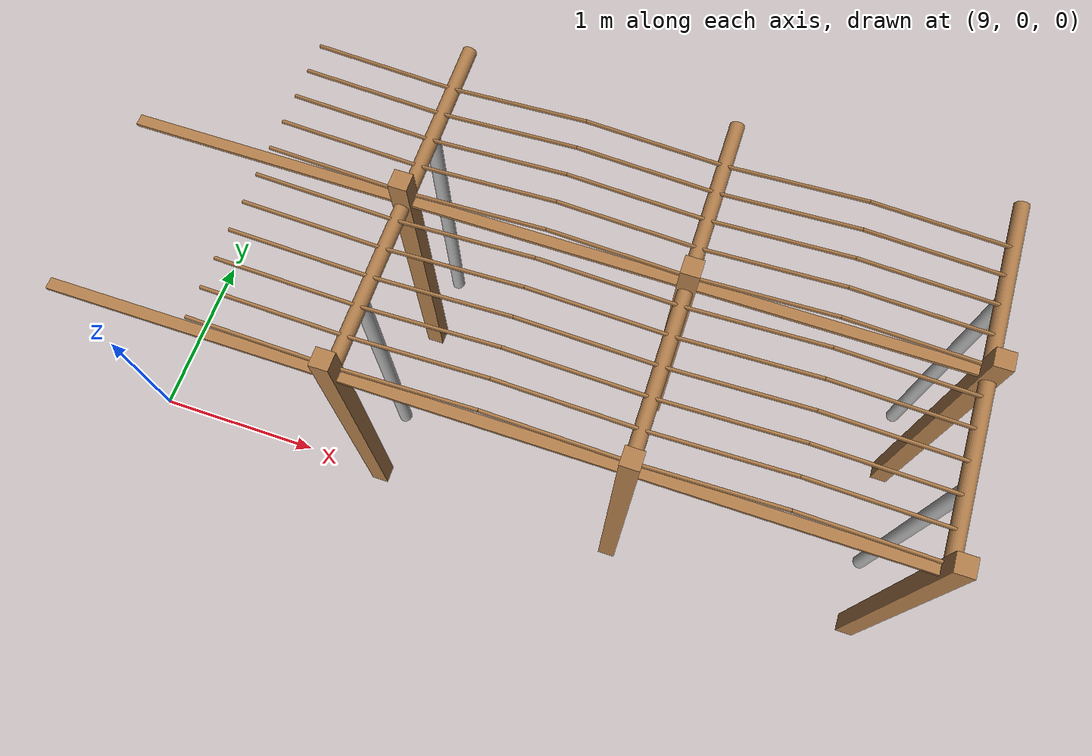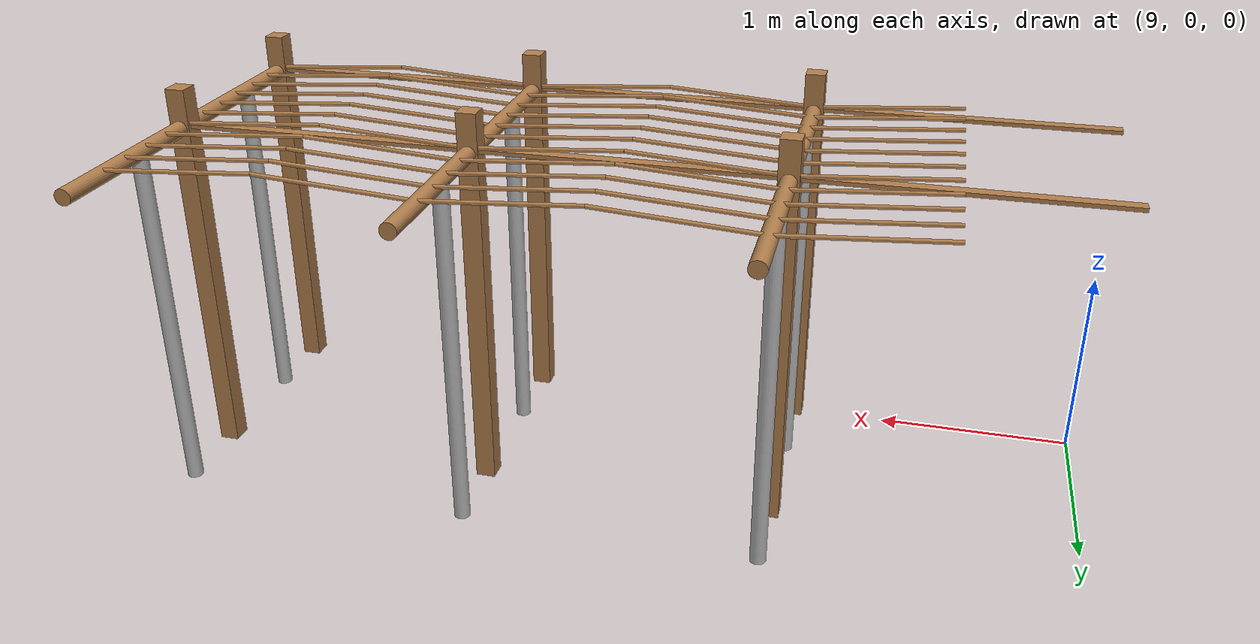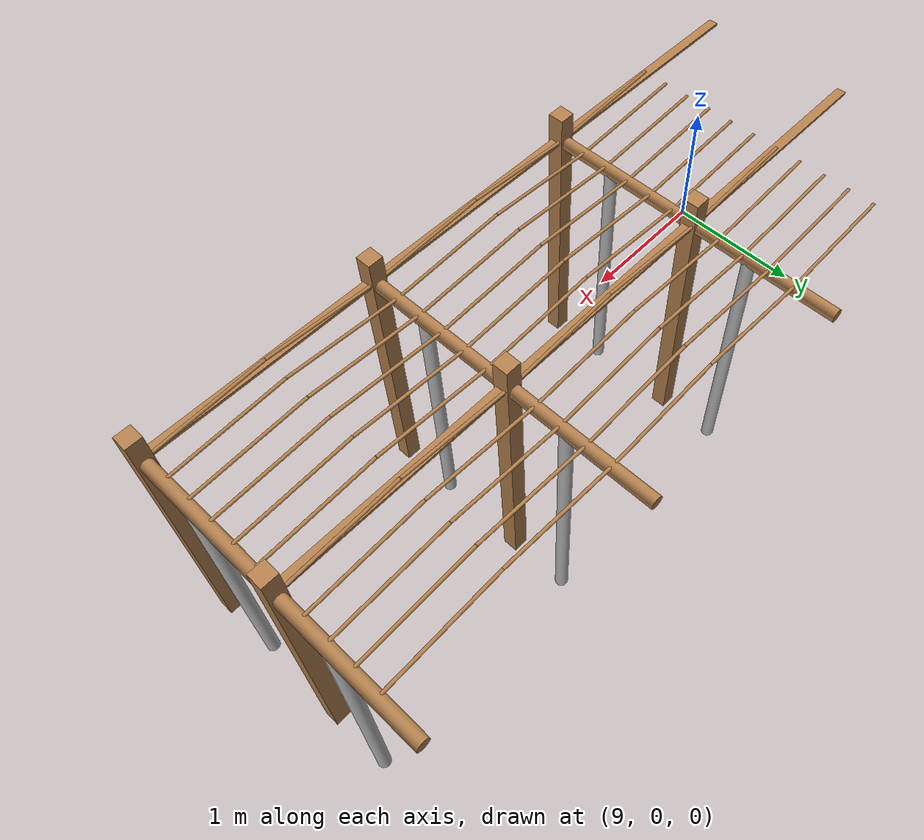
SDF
<sdf version="1.4">
 <model name="pergola">
  <include><name>post_77</name><pose>10.5 0.0 0 0 0 0</pose><uri>model://post</uri></include>
  <include><name>post_78</name><pose>10.5 1.0 0 0 0 0</pose><uri>model://post</uri></include>
  <include><name>post_88</name><pose>12.0 0.0 0 0 0 0</pose><uri>model://post</uri></include>
  <include><name>post_89</name><pose>12.0 1.0 0 0 0 0</pose><uri>model://post</uri></include>
  <include><name>post_99</name><pose>13.5 0.0 0 0 0 0</pose><uri>model://post</uri></include>
  <include><name>post_100</name><pose>13.5 1.0 0 0 0 0</pose><uri>model://post</uri></include>
  <link name="beam_66">
   <pose>9.75 0.0 1.81 0 0 0</pose>
   <collision name="collision"><geometry><box><size>1.5 0.06 0.02</size></box></geometry></collision>
   <visual name="visual">
    <geometry><box><size>1.5 0.06 0.02</size></box></geometry>
    <material><script><name>Gazebo/Wood</name></script></material>
   </visual>
   <inertial>
    <mass>5</mass>
    <inertia>
     <ixx>0.0016666666666666668</ixx>
     <ixy>0.0</ixy>
     <ixz>0.0</ixz>
     <iyy>0.9390000000000001</iyy>
     <iyz>0.0</iyz>
     <izz>0.9376666666666665</izz>
    </inertia>
   </inertial>
  </link>
  <link name="beam_67">
   <pose>9.75 1.0 1.81 0 0 0</pose>
   <collision name="collision"><geometry><box><size>1.5 0.06 0.02</size></box></geometry></collision>
   <visual name="visual">
    <geometry><box><size>1.5 0.06 0.02</size></box></geometry>
    <material><script><name>Gazebo/Wood</name></script></material>
   </visual>
   <inertial>
    <mass>5</mass>
    <inertia>
     <ixx>0.0016666666666666668</ixx>
     <ixy>0.0</ixy>
     <ixz>0.0</ixz>
     <iyy>0.9390000000000001</iyy>
     <iyz>0.0</iyz>
     <izz>0.9376666666666665</izz>
    </inertia>
   </inertial>
  </link>
  <link name="beam_77">
   <pose>11.25 0.0 1.81 0 0 0</pose>
   <collision name="collision"><geometry><box><size>1.5 0.06 0.02</size></box></geometry></collision>
   <visual name="visual">
    <geometry><box><size>1.5 0.06 0.02</size></box></geometry>
    <material><script><name>Gazebo/Wood</name></script></material>
   </visual>
   <inertial>
    <mass>5</mass>
    <inertia>
     <ixx>0.0016666666666666668</ixx>
     <ixy>0.0</ixy>
     <ixz>0.0</ixz>
     <iyy>0.9390000000000001</iyy>
     <iyz>0.0</iyz>
     <izz>0.9376666666666665</izz>
    </inertia>
   </inertial>
  </link>
  <link name="beam_78">
   <pose>11.25 1.0 1.81 0 0 0</pose>
   <collision name="collision"><geometry><box><size>1.5 0.06 0.02</size></box></geometry></collision>
   <visual name="visual">
    <geometry><box><size>1.5 0.06 0.02</size></box></geometry>
    <material><script><name>Gazebo/Wood</name></script></material>
   </visual>
   <inertial>
    <mass>5</mass>
    <inertia>
     <ixx>0.0016666666666666668</ixx>
     <ixy>0.0</ixy>
     <ixz>0.0</ixz>
     <iyy>0.9390000000000001</iyy>
     <iyz>0.0</iyz>
     <izz>0.9376666666666665</izz>
    </inertia>
   </inertial>
  </link>
  <link name="beam_88">
   <pose>12.75 0.0 1.81 0 0 0</pose>
   <collision name="collision"><geometry><box><size>1.5 0.06 0.02</size></box></geometry></collision>
   <visual name="visual">
    <geometry><box><size>1.5 0.06 0.02</size></box></geometry>
    <material><script><name>Gazebo/Wood</name></script></material>
   </visual>
   <inertial>
    <mass>5</mass>
    <inertia>
     <ixx>0.0016666666666666668</ixx>
     <ixy>0.0</ixy>
     <ixz>0.0</ixz>
     <iyy>0.9390000000000001</iyy>
     <iyz>0.0</iyz>
     <izz>0.9376666666666665</izz>
    </inertia>
   </inertial>
  </link>
  <link name="beam_89">
   <pose>12.75 1.0 1.81 0 0 0</pose>
   <collision name="collision"><geometry><box><size>1.5 0.06 0.02</size></box></geometry></collision>
   <visual name="visual">
    <geometry><box><size>1.5 0.06 0.02</size></box></geometry>
    <material><script><name>Gazebo/Wood</name></script></material>
   </visual>
   <inertial>
    <mass>5</mass>
    <inertia>
     <ixx>0.0016666666666666668</ixx>
     <ixy>0.0</ixy>
     <ixz>0.0</ixz>
     <iyy>0.9390000000000001</iyy>
     <iyz>0.0</iyz>
     <izz>0.9376666666666665</izz>
    </inertia>
   </inertial>
  </link>
  <include><name>tree_70</name><pose>10.5 0.4 0 0 0 0</pose><uri>model://tree_trunk</uri></include>
  <include><name>tree_71</name><pose>10.5 1.4 0 0 0 0</pose><uri>model://tree_trunk</uri></include>
  <include><name>tree_80</name><pose>12.0 0.4 0 0 0 0</pose><uri>model://tree_trunk</uri></include>
  <include><name>tree_81</name><pose>12.0 1.4 0 0 0 0</pose><uri>model://tree_trunk</uri></include>
  <include><name>tree_90</name><pose>13.5 0.4 0 0 0 0</pose><uri>model://tree_trunk</uri></include>
  <include><name>tree_91</name><pose>13.5 1.4 0 0 0 0</pose><uri>model://tree_trunk</uri></include>
  <link name="baseBranch_70">
   <pose>10.5 0.5 1.8 1.5707963267948966 0 0</pose>
   <collision name="collision">
    <geometry><cylinder><radius>0.04</radius><length>0.94</length></cylinder></geometry>
   </collision>
   <visual name="visual">
    <geometry><cylinder><radius>0.04</radius><length>0.94</length></cylinder></geometry>
    <material><script><name>Gazebo/WoodFloor</name></script></material>
   </visual>
   <inertial>
    <mass>10</mass>
    <inertia>
     <ixx>0.7403333333333334</ixx>
     <ixy>0.0</ixy>
     <ixz>0.0</ixz>
     <iyy>0.7403333333333334</iyy>
     <iyz>0.0</iyz>
     <izz>0.008</izz>
    </inertia>
   </inertial>
  </link>
  <link name="baseBranch_71">
   <pose>10.5 1.5 1.8 1.5707963267948966 0 0</pose>
   <collision name="collision">
    <geometry><cylinder><radius>0.04</radius><length>0.94</length></cylinder></geometry>
   </collision>
   <visual name="visual">
    <geometry><cylinder><radius>0.04</radius><length>0.94</length></cylinder></geometry>
    <material><script><name>Gazebo/WoodFloor</name></script></material>
   </visual>
   <inertial>
    <mass>10</mass>
    <inertia>
     <ixx>0.7403333333333334</ixx>
     <ixy>0.0</ixy>
     <ixz>0.0</ixz>
     <iyy>0.7403333333333334</iyy>
     <iyz>0.0</iyz>
     <izz>0.008</izz>
    </inertia>
   </inertial>
  </link>
  <link name="baseBranch_80">
   <pose>12.0 0.5 1.8 1.5707963267948966 0 0</pose>
   <collision name="collision">
    <geometry><cylinder><radius>0.04</radius><length>0.94</length></cylinder></geometry>
   </collision>
   <visual name="visual">
    <geometry><cylinder><radius>0.04</radius><length>0.94</length></cylinder></geometry>
    <material><script><name>Gazebo/WoodFloor</name></script></material>
   </visual>
   <inertial>
    <mass>10</mass>
    <inertia>
     <ixx>0.7403333333333334</ixx>
     <ixy>0.0</ixy>
     <ixz>0.0</ixz>
     <iyy>0.7403333333333334</iyy>
     <iyz>0.0</iyz>
     <izz>0.008</izz>
    </inertia>
   </inertial>
  </link>
  <link name="baseBranch_81">
   <pose>12.0 1.5 1.8 1.5707963267948966 0 0</pose>
   <collision name="collision">
    <geometry><cylinder><radius>0.04</radius><length>0.94</length></cylinder></geometry>
   </collision>
   <visual name="visual">
    <geometry><cylinder><radius>0.04</radius><length>0.94</length></cylinder></geometry>
    <material><script><name>Gazebo/WoodFloor</name></script></material>
   </visual>
   <inertial>
    <mass>10</mass>
    <inertia>
     <ixx>0.7403333333333334</ixx>
     <ixy>0.0</ixy>
     <ixz>0.0</ixz>
     <iyy>0.7403333333333334</iyy>
     <iyz>0.0</iyz>
     <izz>0.008</izz>
    </inertia>
   </inertial>
  </link>
  <link name="baseBranch_90">
   <pose>13.5 0.5 1.8 1.5707963267948966 0 0</pose>
   <collision name="collision">
    <geometry><cylinder><radius>0.04</radius><length>0.94</length></cylinder></geometry>
   </collision>
   <visual name="visual">
    <geometry><cylinder><radius>0.04</radius><length>0.94</length></cylinder></geometry>
    <material><script><name>Gazebo/WoodFloor</name></script></material>
   </visual>
   <inertial>
    <mass>10</mass>
    <inertia>
     <ixx>0.7403333333333334</ixx>
     <ixy>0.0</ixy>
     <ixz>0.0</ixz>
     <iyy>0.7403333333333334</iyy>
     <iyz>0.0</iyz>
     <izz>0.008</izz>
    </inertia>
   </inertial>
  </link>
  <link name="baseBranch_91">
   <pose>13.5 1.5 1.8 1.5707963267948966 0 0</pose>
   <collision name="collision">
    <geometry><cylinder><radius>0.04</radius><length>0.94</length></cylinder></geometry>
   </collision>
   <visual name="visual">
    <geometry><cylinder><radius>0.04</radius><length>0.94</length></cylinder></geometry>
    <material><script><name>Gazebo/WoodFloor</name></script></material>
   </visual>
   <inertial>
    <mass>10</mass>
    <inertia>
     <ixx>0.7403333333333334</ixx>
     <ixy>0.0</ixy>
     <ixz>0.0</ixz>
     <iyy>0.7403333333333334</iyy>
     <iyz>0.0</iyz>
     <izz>0.008</izz>
    </inertia>
   </inertial>
  </link>
  <link name="vine_721">
   <pose>10.125 0.03 1.85 0 -1.5042281630190728 0</pose>
   <collision name="collision">
    <geometry><cylinder><radius>0.01</radius><length>0.7516648189186453</length></cylinder></geometry>
   </collision>
   <visual name="visual">
    <geometry><cylinder><radius>0.01</radius><length>0.7516648189186453</length></cylinder></geometry>
    <material><script><name>Gazebo/WoodFloor</name></script></material>
   </visual>
   <inertial>
    <mass>5</mass>
    <inertia>
     <ixx>0.23554166666666657</ixx>
     <ixy>0.0</ixy>
     <ixz>0.0</ixz>
     <iyy>0.23554166666666657</iyy>
     <iyz>0.0</iyz>
     <izz>0.00025</izz>
    </inertia>
   </inertial>
  </link>
  <link name="vine_723">
   <pose>10.125 0.19666666666666666 1.85 0 -1.5042281630190728 0</pose>
   <collision name="collision">
    <geometry><cylinder><radius>0.01</radius><length>0.7516648189186453</length></cylinder></geometry>
   </collision>
   <visual name="visual">
    <geometry><cylinder><radius>0.01</radius><length>0.7516648189186453</length></cylinder></geometry>
    <material><script><name>Gazebo/WoodFloor</name></script></material>
   </visual>
   <inertial>
    <mass>5</mass>
    <inertia>
     <ixx>0.23554166666666657</ixx>
     <ixy>0.0</ixy>
     <ixz>0.0</ixz>
     <iyy>0.23554166666666657</iyy>
     <iyz>0.0</iyz>
     <izz>0.00025</izz>
    </inertia>
   </inertial>
  </link>
  <link name="vine_725">
   <pose>10.125 0.3633333333333333 1.85 0 -1.5042281630190728 0</pose>
   <collision name="collision">
    <geometry><cylinder><radius>0.01</radius><length>0.7516648189186453</length></cylinder></geometry>
   </collision>
   <visual name="visual">
    <geometry><cylinder><radius>0.01</radius><length>0.7516648189186453</length></cylinder></geometry>
    <material><script><name>Gazebo/WoodFloor</name></script></material>
   </visual>
   <inertial>
    <mass>5</mass>
    <inertia>
     <ixx>0.23554166666666657</ixx>
     <ixy>0.0</ixy>
     <ixz>0.0</ixz>
     <iyy>0.23554166666666657</iyy>
     <iyz>0.0</iyz>
     <izz>0.00025</izz>
    </inertia>
   </inertial>
  </link>
  <link name="vine_727">
   <pose>10.125 0.53 1.85 0 -1.5042281630190728 0</pose>
   <collision name="collision">
    <geometry><cylinder><radius>0.01</radius><length>0.7516648189186453</length></cylinder></geometry>
   </collision>
   <visual name="visual">
    <geometry><cylinder><radius>0.01</radius><length>0.7516648189186453</length></cylinder></geometry>
    <material><script><name>Gazebo/WoodFloor</name></script></material>
   </visual>
   <inertial>
    <mass>5</mass>
    <inertia>
     <ixx>0.23554166666666657</ixx>
     <ixy>0.0</ixy>
     <ixz>0.0</ixz>
     <iyy>0.23554166666666657</iyy>
     <iyz>0.0</iyz>
     <izz>0.00025</izz>
    </inertia>
   </inertial>
  </link>
  <link name="vine_729">
   <pose>10.125 0.6966666666666667 1.85 0 -1.5042281630190728 0</pose>
   <collision name="collision">
    <geometry><cylinder><radius>0.01</radius><length>0.7516648189186453</length></cylinder></geometry>
   </collision>
   <visual name="visual">
    <geometry><cylinder><radius>0.01</radius><length>0.7516648189186453</length></cylinder></geometry>
    <material><script><name>Gazebo/WoodFloor</name></script></material>
   </visual>
   <inertial>
    <mass>5</mass>
    <inertia>
     <ixx>0.23554166666666657</ixx>
     <ixy>0.0</ixy>
     <ixz>0.0</ixz>
     <iyy>0.23554166666666657</iyy>
     <iyz>0.0</iyz>
     <izz>0.00025</izz>
    </inertia>
   </inertial>
  </link>
  <link name="vine_731">
   <pose>10.125 0.8633333333333333 1.85 0 -1.5042281630190728 0</pose>
   <collision name="collision">
    <geometry><cylinder><radius>0.01</radius><length>0.7516648189186453</length></cylinder></geometry>
   </collision>
   <visual name="visual">
    <geometry><cylinder><radius>0.01</radius><length>0.7516648189186453</length></cylinder></geometry>
    <material><script><name>Gazebo/WoodFloor</name></script></material>
   </visual>
   <inertial>
    <mass>5</mass>
    <inertia>
     <ixx>0.23554166666666657</ixx>
     <ixy>0.0</ixy>
     <ixz>0.0</ixz>
     <iyy>0.23554166666666657</iyy>
     <iyz>0.0</iyz>
     <izz>0.00025</izz>
    </inertia>
   </inertial>
  </link>
  <link name="vine_733">
   <pose>10.125 1.03 1.85 0 -1.5042281630190728 0</pose>
   <collision name="collision">
    <geometry><cylinder><radius>0.01</radius><length>0.7516648189186453</length></cylinder></geometry>
   </collision>
   <visual name="visual">
    <geometry><cylinder><radius>0.01</radius><length>0.7516648189186453</length></cylinder></geometry>
    <material><script><name>Gazebo/WoodFloor</name></script></material>
   </visual>
   <inertial>
    <mass>5</mass>
    <inertia>
     <ixx>0.23554166666666657</ixx>
     <ixy>0.0</ixy>
     <ixz>0.0</ixz>
     <iyy>0.23554166666666657</iyy>
     <iyz>0.0</iyz>
     <izz>0.00025</izz>
    </inertia>
   </inertial>
  </link>
  <link name="vine_735">
   <pose>10.125 1.1966666666666665 1.85 0 -1.5042281630190728 0</pose>
   <collision name="collision">
    <geometry><cylinder><radius>0.01</radius><length>0.7516648189186453</length></cylinder></geometry>
   </collision>
   <visual name="visual">
    <geometry><cylinder><radius>0.01</radius><length>0.7516648189186453</length></cylinder></geometry>
    <material><script><name>Gazebo/WoodFloor</name></script></material>
   </visual>
   <inertial>
    <mass>5</mass>
    <inertia>
     <ixx>0.23554166666666657</ixx>
     <ixy>0.0</ixy>
     <ixz>0.0</ixz>
     <iyy>0.23554166666666657</iyy>
     <iyz>0.0</iyz>
     <izz>0.00025</izz>
    </inertia>
   </inertial>
  </link>
  <link name="vine_737">
   <pose>10.125 1.3633333333333333 1.85 0 -1.5042281630190728 0</pose>
   <collision name="collision">
    <geometry><cylinder><radius>0.01</radius><length>0.7516648189186453</length></cylinder></geometry>
   </collision>
   <visual name="visual">
    <geometry><cylinder><radius>0.01</radius><length>0.7516648189186453</length></cylinder></geometry>
    <material><script><name>Gazebo/WoodFloor</name></script></material>
   </visual>
   <inertial>
    <mass>5</mass>
    <inertia>
     <ixx>0.23554166666666657</ixx>
     <ixy>0.0</ixy>
     <ixz>0.0</ixz>
     <iyy>0.23554166666666657</iyy>
     <iyz>0.0</iyz>
     <izz>0.00025</izz>
    </inertia>
   </inertial>
  </link>
  <link name="vine_739">
   <pose>10.125 1.53 1.85 0 -1.5042281630190728 0</pose>
   <collision name="collision">
    <geometry><cylinder><radius>0.01</radius><length>0.7516648189186453</length></cylinder></geometry>
   </collision>
   <visual name="visual">
    <geometry><cylinder><radius>0.01</radius><length>0.7516648189186453</length></cylinder></geometry>
    <material><script><name>Gazebo/WoodFloor</name></script></material>
   </visual>
   <inertial>
    <mass>5</mass>
    <inertia>
     <ixx>0.23554166666666657</ixx>
     <ixy>0.0</ixy>
     <ixz>0.0</ixz>
     <iyy>0.23554166666666657</iyy>
     <iyz>0.0</iyz>
     <izz>0.00025</izz>
    </inertia>
   </inertial>
  </link>
  <link name="vine_741">
   <pose>10.125 1.6966666666666665 1.85 0 -1.5042281630190728 0</pose>
   <collision name="collision">
    <geometry><cylinder><radius>0.01</radius><length>0.7516648189186453</length></cylinder></geometry>
   </collision>
   <visual name="visual">
    <geometry><cylinder><radius>0.01</radius><length>0.7516648189186453</length></cylinder></geometry>
    <material><script><name>Gazebo/WoodFloor</name></script></material>
   </visual>
   <inertial>
    <mass>5</mass>
    <inertia>
     <ixx>0.23554166666666657</ixx>
     <ixy>0.0</ixy>
     <ixz>0.0</ixz>
     <iyy>0.23554166666666657</iyy>
     <iyz>0.0</iyz>
     <izz>0.00025</izz>
    </inertia>
   </inertial>
  </link>
  <link name="vine_840">
   <pose>10.875 0.03 1.85 0 1.5042281630190728 0</pose>
   <collision name="collision">
    <geometry><cylinder><radius>0.01</radius><length>0.7516648189186453</length></cylinder></geometry>
   </collision>
   <visual name="visual">
    <geometry><cylinder><radius>0.01</radius><length>0.7516648189186453</length></cylinder></geometry>
    <material><script><name>Gazebo/WoodFloor</name></script></material>
   </visual>
   <inertial>
    <mass>5</mass>
    <inertia>
     <ixx>0.23554166666666657</ixx>
     <ixy>0.0</ixy>
     <ixz>0.0</ixz>
     <iyy>0.23554166666666657</iyy>
     <iyz>0.0</iyz>
     <izz>0.00025</izz>
    </inertia>
   </inertial>
  </link>
  <link name="vine_841">
   <pose>11.625 0.03 1.85 0 -1.5042281630190728 0</pose>
   <collision name="collision">
    <geometry><cylinder><radius>0.01</radius><length>0.7516648189186453</length></cylinder></geometry>
   </collision>
   <visual name="visual">
    <geometry><cylinder><radius>0.01</radius><length>0.7516648189186453</length></cylinder></geometry>
    <material><script><name>Gazebo/WoodFloor</name></script></material>
   </visual>
   <inertial>
    <mass>5</mass>
    <inertia>
     <ixx>0.23554166666666657</ixx>
     <ixy>0.0</ixy>
     <ixz>0.0</ixz>
     <iyy>0.23554166666666657</iyy>
     <iyz>0.0</iyz>
     <izz>0.00025</izz>
    </inertia>
   </inertial>
  </link>
  <link name="vine_842">
   <pose>10.875 0.19666666666666666 1.85 0 1.5042281630190728 0</pose>
   <collision name="collision">
    <geometry><cylinder><radius>0.01</radius><length>0.7516648189186453</length></cylinder></geometry>
   </collision>
   <visual name="visual">
    <geometry><cylinder><radius>0.01</radius><length>0.7516648189186453</length></cylinder></geometry>
    <material><script><name>Gazebo/WoodFloor</name></script></material>
   </visual>
   <inertial>
    <mass>5</mass>
    <inertia>
     <ixx>0.23554166666666657</ixx>
     <ixy>0.0</ixy>
     <ixz>0.0</ixz>
     <iyy>0.23554166666666657</iyy>
     <iyz>0.0</iyz>
     <izz>0.00025</izz>
    </inertia>
   </inertial>
  </link>
  <link name="vine_843">
   <pose>11.625 0.19666666666666666 1.85 0 -1.5042281630190728 0</pose>
   <collision name="collision">
    <geometry><cylinder><radius>0.01</radius><length>0.7516648189186453</length></cylinder></geometry>
   </collision>
   <visual name="visual">
    <geometry><cylinder><radius>0.01</radius><length>0.7516648189186453</length></cylinder></geometry>
    <material><script><name>Gazebo/WoodFloor</name></script></material>
   </visual>
   <inertial>
    <mass>5</mass>
    <inertia>
     <ixx>0.23554166666666657</ixx>
     <ixy>0.0</ixy>
     <ixz>0.0</ixz>
     <iyy>0.23554166666666657</iyy>
     <iyz>0.0</iyz>
     <izz>0.00025</izz>
    </inertia>
   </inertial>
  </link>
  <link name="vine_844">
   <pose>10.875 0.3633333333333333 1.85 0 1.5042281630190728 0</pose>
   <collision name="collision">
    <geometry><cylinder><radius>0.01</radius><length>0.7516648189186453</length></cylinder></geometry>
   </collision>
   <visual name="visual">
    <geometry><cylinder><radius>0.01</radius><length>0.7516648189186453</length></cylinder></geometry>
    <material><script><name>Gazebo/WoodFloor</name></script></material>
   </visual>
   <inertial>
    <mass>5</mass>
    <inertia>
     <ixx>0.23554166666666657</ixx>
     <ixy>0.0</ixy>
     <ixz>0.0</ixz>
     <iyy>0.23554166666666657</iyy>
     <iyz>0.0</iyz>
     <izz>0.00025</izz>
    </inertia>
   </inertial>
  </link>
  <link name="vine_845">
   <pose>11.625 0.3633333333333333 1.85 0 -1.5042281630190728 0</pose>
   <collision name="collision">
    <geometry><cylinder><radius>0.01</radius><length>0.7516648189186453</length></cylinder></geometry>
   </collision>
   <visual name="visual">
    <geometry><cylinder><radius>0.01</radius><length>0.7516648189186453</length></cylinder></geometry>
    <material><script><name>Gazebo/WoodFloor</name></script></material>
   </visual>
   <inertial>
    <mass>5</mass>
    <inertia>
     <ixx>0.23554166666666657</ixx>
     <ixy>0.0</ixy>
     <ixz>0.0</ixz>
     <iyy>0.23554166666666657</iyy>
     <iyz>0.0</iyz>
     <izz>0.00025</izz>
    </inertia>
   </inertial>
  </link>
  <link name="vine_846">
   <pose>10.875 0.53 1.85 0 1.5042281630190728 0</pose>
   <collision name="collision">
    <geometry><cylinder><radius>0.01</radius><length>0.7516648189186453</length></cylinder></geometry>
   </collision>
   <visual name="visual">
    <geometry><cylinder><radius>0.01</radius><length>0.7516648189186453</length></cylinder></geometry>
    <material><script><name>Gazebo/WoodFloor</name></script></material>
   </visual>
   <inertial>
    <mass>5</mass>
    <inertia>
     <ixx>0.23554166666666657</ixx>
     <ixy>0.0</ixy>
     <ixz>0.0</ixz>
     <iyy>0.23554166666666657</iyy>
     <iyz>0.0</iyz>
     <izz>0.00025</izz>
    </inertia>
   </inertial>
  </link>
  <link name="vine_847">
   <pose>11.625 0.53 1.85 0 -1.5042281630190728 0</pose>
   <collision name="collision">
    <geometry><cylinder><radius>0.01</radius><length>0.7516648189186453</length></cylinder></geometry>
   </collision>
   <visual name="visual">
    <geometry><cylinder><radius>0.01</radius><length>0.7516648189186453</length></cylinder></geometry>
    <material><script><name>Gazebo/WoodFloor</name></script></material>
   </visual>
   <inertial>
    <mass>5</mass>
    <inertia>
     <ixx>0.23554166666666657</ixx>
     <ixy>0.0</ixy>
     <ixz>0.0</ixz>
     <iyy>0.23554166666666657</iyy>
     <iyz>0.0</iyz>
     <izz>0.00025</izz>
    </inertia>
   </inertial>
  </link>
  <link name="vine_848">
   <pose>10.875 0.6966666666666667 1.85 0 1.5042281630190728 0</pose>
   <collision name="collision">
    <geometry><cylinder><radius>0.01</radius><length>0.7516648189186453</length></cylinder></geometry>
   </collision>
   <visual name="visual">
    <geometry><cylinder><radius>0.01</radius><length>0.7516648189186453</length></cylinder></geometry>
    <material><script><name>Gazebo/WoodFloor</name></script></material>
   </visual>
   <inertial>
    <mass>5</mass>
    <inertia>
     <ixx>0.23554166666666657</ixx>
     <ixy>0.0</ixy>
     <ixz>0.0</ixz>
     <iyy>0.23554166666666657</iyy>
     <iyz>0.0</iyz>
     <izz>0.00025</izz>
    </inertia>
   </inertial>
  </link>
  <link name="vine_849">
   <pose>11.625 0.6966666666666667 1.85 0 -1.5042281630190728 0</pose>
   <collision name="collision">
    <geometry><cylinder><radius>0.01</radius><length>0.7516648189186453</length></cylinder></geometry>
   </collision>
   <visual name="visual">
    <geometry><cylinder><radius>0.01</radius><length>0.7516648189186453</length></cylinder></geometry>
    <material><script><name>Gazebo/WoodFloor</name></script></material>
   </visual>
   <inertial>
    <mass>5</mass>
    <inertia>
     <ixx>0.23554166666666657</ixx>
     <ixy>0.0</ixy>
     <ixz>0.0</ixz>
     <iyy>0.23554166666666657</iyy>
     <iyz>0.0</iyz>
     <izz>0.00025</izz>
    </inertia>
   </inertial>
  </link>
  <link name="vine_850">
   <pose>10.875 0.8633333333333333 1.85 0 1.5042281630190728 0</pose>
   <collision name="collision">
    <geometry><cylinder><radius>0.01</radius><length>0.7516648189186453</length></cylinder></geometry>
   </collision>
   <visual name="visual">
    <geometry><cylinder><radius>0.01</radius><length>0.7516648189186453</length></cylinder></geometry>
    <material><script><name>Gazebo/WoodFloor</name></script></material>
   </visual>
   <inertial>
    <mass>5</mass>
    <inertia>
     <ixx>0.23554166666666657</ixx>
     <ixy>0.0</ixy>
     <ixz>0.0</ixz>
     <iyy>0.23554166666666657</iyy>
     <iyz>0.0</iyz>
     <izz>0.00025</izz>
    </inertia>
   </inertial>
  </link>
  <link name="vine_851">
   <pose>11.625 0.8633333333333333 1.85 0 -1.5042281630190728 0</pose>
   <collision name="collision">
    <geometry><cylinder><radius>0.01</radius><length>0.7516648189186453</length></cylinder></geometry>
   </collision>
   <visual name="visual">
    <geometry><cylinder><radius>0.01</radius><length>0.7516648189186453</length></cylinder></geometry>
    <material><script><name>Gazebo/WoodFloor</name></script></material>
   </visual>
   <inertial>
    <mass>5</mass>
    <inertia>
     <ixx>0.23554166666666657</ixx>
     <ixy>0.0</ixy>
     <ixz>0.0</ixz>
     <iyy>0.23554166666666657</iyy>
     <iyz>0.0</iyz>
     <izz>0.00025</izz>
    </inertia>
   </inertial>
  </link>
  <link name="vine_852">
   <pose>10.875 1.03 1.85 0 1.5042281630190728 0</pose>
   <collision name="collision">
    <geometry><cylinder><radius>0.01</radius><length>0.7516648189186453</length></cylinder></geometry>
   </collision>
   <visual name="visual">
    <geometry><cylinder><radius>0.01</radius><length>0.7516648189186453</length></cylinder></geometry>
    <material><script><name>Gazebo/WoodFloor</name></script></material>
   </visual>
   <inertial>
    <mass>5</mass>
    <inertia>
     <ixx>0.23554166666666657</ixx>
     <ixy>0.0</ixy>
     <ixz>0.0</ixz>
     <iyy>0.23554166666666657</iyy>
     <iyz>0.0</iyz>
     <izz>0.00025</izz>
    </inertia>
   </inertial>
  </link>
  <link name="vine_853">
   <pose>11.625 1.03 1.85 0 -1.5042281630190728 0</pose>
   <collision name="collision">
    <geometry><cylinder><radius>0.01</radius><length>0.7516648189186453</length></cylinder></geometry>
   </collision>
   <visual name="visual">
    <geometry><cylinder><radius>0.01</radius><length>0.7516648189186453</length></cylinder></geometry>
    <material><script><name>Gazebo/WoodFloor</name></script></material>
   </visual>
   <inertial>
    <mass>5</mass>
    <inertia>
     <ixx>0.23554166666666657</ixx>
     <ixy>0.0</ixy>
     <ixz>0.0</ixz>
     <iyy>0.23554166666666657</iyy>
     <iyz>0.0</iyz>
     <izz>0.00025</izz>
    </inertia>
   </inertial>
  </link>
  <link name="vine_854">
   <pose>10.875 1.1966666666666665 1.85 0 1.5042281630190728 0</pose>
   <collision name="collision">
    <geometry><cylinder><radius>0.01</radius><length>0.7516648189186453</length></cylinder></geometry>
   </collision>
   <visual name="visual">
    <geometry><cylinder><radius>0.01</radius><length>0.7516648189186453</length></cylinder></geometry>
    <material><script><name>Gazebo/WoodFloor</name></script></material>
   </visual>
   <inertial>
    <mass>5</mass>
    <inertia>
     <ixx>0.23554166666666657</ixx>
     <ixy>0.0</ixy>
     <ixz>0.0</ixz>
     <iyy>0.23554166666666657</iyy>
     <iyz>0.0</iyz>
     <izz>0.00025</izz>
    </inertia>
   </inertial>
  </link>
  <link name="vine_855">
   <pose>11.625 1.1966666666666665 1.85 0 -1.5042281630190728 0</pose>
   <collision name="collision">
    <geometry><cylinder><radius>0.01</radius><length>0.7516648189186453</length></cylinder></geometry>
   </collision>
   <visual name="visual">
    <geometry><cylinder><radius>0.01</radius><length>0.7516648189186453</length></cylinder></geometry>
    <material><script><name>Gazebo/WoodFloor</name></script></material>
   </visual>
   <inertial>
    <mass>5</mass>
    <inertia>
     <ixx>0.23554166666666657</ixx>
     <ixy>0.0</ixy>
     <ixz>0.0</ixz>
     <iyy>0.23554166666666657</iyy>
     <iyz>0.0</iyz>
     <izz>0.00025</izz>
    </inertia>
   </inertial>
  </link>
  <link name="vine_856">
   <pose>10.875 1.3633333333333333 1.85 0 1.5042281630190728 0</pose>
   <collision name="collision">
    <geometry><cylinder><radius>0.01</radius><length>0.7516648189186453</length></cylinder></geometry>
   </collision>
   <visual name="visual">
    <geometry><cylinder><radius>0.01</radius><length>0.7516648189186453</length></cylinder></geometry>
    <material><script><name>Gazebo/WoodFloor</name></script></material>
   </visual>
   <inertial>
    <mass>5</mass>
    <inertia>
     <ixx>0.23554166666666657</ixx>
     <ixy>0.0</ixy>
     <ixz>0.0</ixz>
     <iyy>0.23554166666666657</iyy>
     <iyz>0.0</iyz>
     <izz>0.00025</izz>
    </inertia>
   </inertial>
  </link>
  <link name="vine_857">
   <pose>11.625 1.3633333333333333 1.85 0 -1.5042281630190728 0</pose>
   <collision name="collision">
    <geometry><cylinder><radius>0.01</radius><length>0.7516648189186453</length></cylinder></geometry>
   </collision>
   <visual name="visual">
    <geometry><cylinder><radius>0.01</radius><length>0.7516648189186453</length></cylinder></geometry>
    <material><script><name>Gazebo/WoodFloor</name></script></material>
   </visual>
   <inertial>
    <mass>5</mass>
    <inertia>
     <ixx>0.23554166666666657</ixx>
     <ixy>0.0</ixy>
     <ixz>0.0</ixz>
     <iyy>0.23554166666666657</iyy>
     <iyz>0.0</iyz>
     <izz>0.00025</izz>
    </inertia>
   </inertial>
  </link>
  <link name="vine_858">
   <pose>10.875 1.53 1.85 0 1.5042281630190728 0</pose>
   <collision name="collision">
    <geometry><cylinder><radius>0.01</radius><length>0.7516648189186453</length></cylinder></geometry>
   </collision>
   <visual name="visual">
    <geometry><cylinder><radius>0.01</radius><length>0.7516648189186453</length></cylinder></geometry>
    <material><script><name>Gazebo/WoodFloor</name></script></material>
   </visual>
   <inertial>
    <mass>5</mass>
    <inertia>
     <ixx>0.23554166666666657</ixx>
     <ixy>0.0</ixy>
     <ixz>0.0</ixz>
     <iyy>0.23554166666666657</iyy>
     <iyz>0.0</iyz>
     <izz>0.00025</izz>
    </inertia>
   </inertial>
  </link>
  <link name="vine_859">
   <pose>11.625 1.53 1.85 0 -1.5042281630190728 0</pose>
   <collision name="collision">
    <geometry><cylinder><radius>0.01</radius><length>0.7516648189186453</length></cylinder></geometry>
   </collision>
   <visual name="visual">
    <geometry><cylinder><radius>0.01</radius><length>0.7516648189186453</length></cylinder></geometry>
    <material><script><name>Gazebo/WoodFloor</name></script></material>
   </visual>
   <inertial>
    <mass>5</mass>
    <inertia>
     <ixx>0.23554166666666657</ixx>
     <ixy>0.0</ixy>
     <ixz>0.0</ixz>
     <iyy>0.23554166666666657</iyy>
     <iyz>0.0</iyz>
     <izz>0.00025</izz>
    </inertia>
   </inertial>
  </link>
  <link name="vine_860">
   <pose>10.875 1.6966666666666665 1.85 0 1.5042281630190728 0</pose>
   <collision name="collision">
    <geometry><cylinder><radius>0.01</radius><length>0.7516648189186453</length></cylinder></geometry>
   </collision>
   <visual name="visual">
    <geometry><cylinder><radius>0.01</radius><length>0.7516648189186453</length></cylinder></geometry>
    <material><script><name>Gazebo/WoodFloor</name></script></material>
   </visual>
   <inertial>
    <mass>5</mass>
    <inertia>
     <ixx>0.23554166666666657</ixx>
     <ixy>0.0</ixy>
     <ixz>0.0</ixz>
     <iyy>0.23554166666666657</iyy>
     <iyz>0.0</iyz>
     <izz>0.00025</izz>
    </inertia>
   </inertial>
  </link>
  <link name="vine_861">
   <pose>11.625 1.6966666666666665 1.85 0 -1.5042281630190728 0</pose>
   <collision name="collision">
    <geometry><cylinder><radius>0.01</radius><length>0.7516648189186453</length></cylinder></geometry>
   </collision>
   <visual name="visual">
    <geometry><cylinder><radius>0.01</radius><length>0.7516648189186453</length></cylinder></geometry>
    <material><script><name>Gazebo/WoodFloor</name></script></material>
   </visual>
   <inertial>
    <mass>5</mass>
    <inertia>
     <ixx>0.23554166666666657</ixx>
     <ixy>0.0</ixy>
     <ixz>0.0</ixz>
     <iyy>0.23554166666666657</iyy>
     <iyz>0.0</iyz>
     <izz>0.00025</izz>
    </inertia>
   </inertial>
  </link>
  <link name="vine_960">
   <pose>12.375 0.03 1.85 0 1.5042281630190728 0</pose>
   <collision name="collision">
    <geometry><cylinder><radius>0.01</radius><length>0.7516648189186453</length></cylinder></geometry>
   </collision>
   <visual name="visual">
    <geometry><cylinder><radius>0.01</radius><length>0.7516648189186453</length></cylinder></geometry>
    <material><script><name>Gazebo/WoodFloor</name></script></material>
   </visual>
   <inertial>
    <mass>5</mass>
    <inertia>
     <ixx>0.23554166666666657</ixx>
     <ixy>0.0</ixy>
     <ixz>0.0</ixz>
     <iyy>0.23554166666666657</iyy>
     <iyz>0.0</iyz>
     <izz>0.00025</izz>
    </inertia>
   </inertial>
  </link>
  <link name="vine_961">
   <pose>13.125 0.03 1.85 0 -1.5042281630190728 0</pose>
   <collision name="collision">
    <geometry><cylinder><radius>0.01</radius><length>0.7516648189186453</length></cylinder></geometry>
   </collision>
   <visual name="visual">
    <geometry><cylinder><radius>0.01</radius><length>0.7516648189186453</length></cylinder></geometry>
    <material><script><name>Gazebo/WoodFloor</name></script></material>
   </visual>
   <inertial>
    <mass>5</mass>
    <inertia>
     <ixx>0.23554166666666657</ixx>
     <ixy>0.0</ixy>
     <ixz>0.0</ixz>
     <iyy>0.23554166666666657</iyy>
     <iyz>0.0</iyz>
     <izz>0.00025</izz>
    </inertia>
   </inertial>
  </link>
  <link name="vine_962">
   <pose>12.375 0.19666666666666666 1.85 0 1.5042281630190728 0</pose>
   <collision name="collision">
    <geometry><cylinder><radius>0.01</radius><length>0.7516648189186453</length></cylinder></geometry>
   </collision>
   <visual name="visual">
    <geometry><cylinder><radius>0.01</radius><length>0.7516648189186453</length></cylinder></geometry>
    <material><script><name>Gazebo/WoodFloor</name></script></material>
   </visual>
   <inertial>
    <mass>5</mass>
    <inertia>
     <ixx>0.23554166666666657</ixx>
     <ixy>0.0</ixy>
     <ixz>0.0</ixz>
     <iyy>0.23554166666666657</iyy>
     <iyz>0.0</iyz>
     <izz>0.00025</izz>
    </inertia>
   </inertial>
  </link>
  <link name="vine_963">
   <pose>13.125 0.19666666666666666 1.85 0 -1.5042281630190728 0</pose>
   <collision name="collision">
    <geometry><cylinder><radius>0.01</radius><length>0.7516648189186453</length></cylinder></geometry>
   </collision>
   <visual name="visual">
    <geometry><cylinder><radius>0.01</radius><length>0.7516648189186453</length></cylinder></geometry>
    <material><script><name>Gazebo/WoodFloor</name></script></material>
   </visual>
   <inertial>
    <mass>5</mass>
    <inertia>
     <ixx>0.23554166666666657</ixx>
     <ixy>0.0</ixy>
     <ixz>0.0</ixz>
     <iyy>0.23554166666666657</iyy>
     <iyz>0.0</iyz>
     <izz>0.00025</izz>
    </inertia>
   </inertial>
  </link>
  <link name="vine_964">
   <pose>12.375 0.3633333333333333 1.85 0 1.5042281630190728 0</pose>
   <collision name="collision">
    <geometry><cylinder><radius>0.01</radius><length>0.7516648189186453</length></cylinder></geometry>
   </collision>
   <visual name="visual">
    <geometry><cylinder><radius>0.01</radius><length>0.7516648189186453</length></cylinder></geometry>
    <material><script><name>Gazebo/WoodFloor</name></script></material>
   </visual>
   <inertial>
    <mass>5</mass>
    <inertia>
     <ixx>0.23554166666666657</ixx>
     <ixy>0.0</ixy>
     <ixz>0.0</ixz>
     <iyy>0.23554166666666657</iyy>
     <iyz>0.0</iyz>
     <izz>0.00025</izz>
    </inertia>
   </inertial>
  </link>
  <link name="vine_965">
   <pose>13.125 0.3633333333333333 1.85 0 -1.5042281630190728 0</pose>
   <collision name="collision">
    <geometry><cylinder><radius>0.01</radius><length>0.7516648189186453</length></cylinder></geometry>
   </collision>
   <visual name="visual">
    <geometry><cylinder><radius>0.01</radius><length>0.7516648189186453</length></cylinder></geometry>
    <material><script><name>Gazebo/WoodFloor</name></script></material>
   </visual>
   <inertial>
    <mass>5</mass>
    <inertia>
     <ixx>0.23554166666666657</ixx>
     <ixy>0.0</ixy>
     <ixz>0.0</ixz>
     <iyy>0.23554166666666657</iyy>
     <iyz>0.0</iyz>
     <izz>0.00025</izz>
    </inertia>
   </inertial>
  </link>
  <link name="vine_966">
   <pose>12.375 0.53 1.85 0 1.5042281630190728 0</pose>
   <collision name="collision">
    <geometry><cylinder><radius>0.01</radius><length>0.7516648189186453</length></cylinder></geometry>
   </collision>
   <visual name="visual">
    <geometry><cylinder><radius>0.01</radius><length>0.7516648189186453</length></cylinder></geometry>
    <material><script><name>Gazebo/WoodFloor</name></script></material>
   </visual>
   <inertial>
    <mass>5</mass>
    <inertia>
     <ixx>0.23554166666666657</ixx>
     <ixy>0.0</ixy>
     <ixz>0.0</ixz>
     <iyy>0.23554166666666657</iyy>
     <iyz>0.0</iyz>
     <izz>0.00025</izz>
    </inertia>
   </inertial>
  </link>
  <link name="vine_967">
   <pose>13.125 0.53 1.85 0 -1.5042281630190728 0</pose>
   <collision name="collision">
    <geometry><cylinder><radius>0.01</radius><length>0.7516648189186453</length></cylinder></geometry>
   </collision>
   <visual name="visual">
    <geometry><cylinder><radius>0.01</radius><length>0.7516648189186453</length></cylinder></geometry>
    <material><script><name>Gazebo/WoodFloor</name></script></material>
   </visual>
   <inertial>
    <mass>5</mass>
    <inertia>
     <ixx>0.23554166666666657</ixx>
     <ixy>0.0</ixy>
     <ixz>0.0</ixz>
     <iyy>0.23554166666666657</iyy>
     <iyz>0.0</iyz>
     <izz>0.00025</izz>
    </inertia>
   </inertial>
  </link>
  <link name="vine_968">
   <pose>12.375 0.6966666666666667 1.85 0 1.5042281630190728 0</pose>
   <collision name="collision">
    <geometry><cylinder><radius>0.01</radius><length>0.7516648189186453</length></cylinder></geometry>
   </collision>
   <visual name="visual">
    <geometry><cylinder><radius>0.01</radius><length>0.7516648189186453</length></cylinder></geometry>
    <material><script><name>Gazebo/WoodFloor</name></script></material>
   </visual>
   <inertial>
    <mass>5</mass>
    <inertia>
     <ixx>0.23554166666666657</ixx>
     <ixy>0.0</ixy>
     <ixz>0.0</ixz>
     <iyy>0.23554166666666657</iyy>
     <iyz>0.0</iyz>
     <izz>0.00025</izz>
    </inertia>
   </inertial>
  </link>
  <link name="vine_969">
   <pose>13.125 0.6966666666666667 1.85 0 -1.5042281630190728 0</pose>
   <collision name="collision">
    <geometry><cylinder><radius>0.01</radius><length>0.7516648189186453</length></cylinder></geometry>
   </collision>
   <visual name="visual">
    <geometry><cylinder><radius>0.01</radius><length>0.7516648189186453</length></cylinder></geometry>
    <material><script><name>Gazebo/WoodFloor</name></script></material>
   </visual>
   <inertial>
    <mass>5</mass>
    <inertia>
     <ixx>0.23554166666666657</ixx>
     <ixy>0.0</ixy>
     <ixz>0.0</ixz>
     <iyy>0.23554166666666657</iyy>
     <iyz>0.0</iyz>
     <izz>0.00025</izz>
    </inertia>
   </inertial>
  </link>
  <link name="vine_970">
   <pose>12.375 0.8633333333333333 1.85 0 1.5042281630190728 0</pose>
   <collision name="collision">
    <geometry><cylinder><radius>0.01</radius><length>0.7516648189186453</length></cylinder></geometry>
   </collision>
   <visual name="visual">
    <geometry><cylinder><radius>0.01</radius><length>0.7516648189186453</length></cylinder></geometry>
    <material><script><name>Gazebo/WoodFloor</name></script></material>
   </visual>
   <inertial>
    <mass>5</mass>
    <inertia>
     <ixx>0.23554166666666657</ixx>
     <ixy>0.0</ixy>
     <ixz>0.0</ixz>
     <iyy>0.23554166666666657</iyy>
     <iyz>0.0</iyz>
     <izz>0.00025</izz>
    </inertia>
   </inertial>
  </link>
  <link name="vine_971">
   <pose>13.125 0.8633333333333333 1.85 0 -1.5042281630190728 0</pose>
   <collision name="collision">
    <geometry><cylinder><radius>0.01</radius><length>0.7516648189186453</length></cylinder></geometry>
   </collision>
   <visual name="visual">
    <geometry><cylinder><radius>0.01</radius><length>0.7516648189186453</length></cylinder></geometry>
    <material><script><name>Gazebo/WoodFloor</name></script></material>
   </visual>
   <inertial>
    <mass>5</mass>
    <inertia>
     <ixx>0.23554166666666657</ixx>
     <ixy>0.0</ixy>
     <ixz>0.0</ixz>
     <iyy>0.23554166666666657</iyy>
     <iyz>0.0</iyz>
     <izz>0.00025</izz>
    </inertia>
   </inertial>
  </link>
  <link name="vine_972">
   <pose>12.375 1.03 1.85 0 1.5042281630190728 0</pose>
   <collision name="collision">
    <geometry><cylinder><radius>0.01</radius><length>0.7516648189186453</length></cylinder></geometry>
   </collision>
   <visual name="visual">
    <geometry><cylinder><radius>0.01</radius><length>0.7516648189186453</length></cylinder></geometry>
    <material><script><name>Gazebo/WoodFloor</name></script></material>
   </visual>
   <inertial>
    <mass>5</mass>
    <inertia>
     <ixx>0.23554166666666657</ixx>
     <ixy>0.0</ixy>
     <ixz>0.0</ixz>
     <iyy>0.23554166666666657</iyy>
     <iyz>0.0</iyz>
     <izz>0.00025</izz>
    </inertia>
   </inertial>
  </link>
  <link name="vine_973">
   <pose>13.125 1.03 1.85 0 -1.5042281630190728 0</pose>
   <collision name="collision">
    <geometry><cylinder><radius>0.01</radius><length>0.7516648189186453</length></cylinder></geometry>
   </collision>
   <visual name="visual">
    <geometry><cylinder><radius>0.01</radius><length>0.7516648189186453</length></cylinder></geometry>
    <material><script><name>Gazebo/WoodFloor</name></script></material>
   </visual>
   <inertial>
    <mass>5</mass>
    <inertia>
     <ixx>0.23554166666666657</ixx>
     <ixy>0.0</ixy>
     <ixz>0.0</ixz>
     <iyy>0.23554166666666657</iyy>
     <iyz>0.0</iyz>
     <izz>0.00025</izz>
    </inertia>
   </inertial>
  </link>
  <link name="vine_974">
   <pose>12.375 1.1966666666666665 1.85 0 1.5042281630190728 0</pose>
   <collision name="collision">
    <geometry><cylinder><radius>0.01</radius><length>0.7516648189186453</length></cylinder></geometry>
   </collision>
   <visual name="visual">
    <geometry><cylinder><radius>0.01</radius><length>0.7516648189186453</length></cylinder></geometry>
    <material><script><name>Gazebo/WoodFloor</name></script></material>
   </visual>
   <inertial>
    <mass>5</mass>
    <inertia>
     <ixx>0.23554166666666657</ixx>
     <ixy>0.0</ixy>
     <ixz>0.0</ixz>
     <iyy>0.23554166666666657</iyy>
     <iyz>0.0</iyz>
     <izz>0.00025</izz>
    </inertia>
   </inertial>
  </link>
  <link name="vine_975">
   <pose>13.125 1.1966666666666665 1.85 0 -1.5042281630190728 0</pose>
   <collision name="collision">
    <geometry><cylinder><radius>0.01</radius><length>0.7516648189186453</length></cylinder></geometry>
   </collision>
   <visual name="visual">
    <geometry><cylinder><radius>0.01</radius><length>0.7516648189186453</length></cylinder></geometry>
    <material><script><name>Gazebo/WoodFloor</name></script></material>
   </visual>
   <inertial>
    <mass>5</mass>
    <inertia>
     <ixx>0.23554166666666657</ixx>
     <ixy>0.0</ixy>
     <ixz>0.0</ixz>
     <iyy>0.23554166666666657</iyy>
     <iyz>0.0</iyz>
     <izz>0.00025</izz>
    </inertia>
   </inertial>
  </link>
  <link name="vine_976">
   <pose>12.375 1.3633333333333333 1.85 0 1.5042281630190728 0</pose>
   <collision name="collision">
    <geometry><cylinder><radius>0.01</radius><length>0.7516648189186453</length></cylinder></geometry>
   </collision>
   <visual name="visual">
    <geometry><cylinder><radius>0.01</radius><length>0.7516648189186453</length></cylinder></geometry>
    <material><script><name>Gazebo/WoodFloor</name></script></material>
   </visual>
   <inertial>
    <mass>5</mass>
    <inertia>
     <ixx>0.23554166666666657</ixx>
     <ixy>0.0</ixy>
     <ixz>0.0</ixz>
     <iyy>0.23554166666666657</iyy>
     <iyz>0.0</iyz>
     <izz>0.00025</izz>
    </inertia>
   </inertial>
  </link>
  <link name="vine_977">
   <pose>13.125 1.3633333333333333 1.85 0 -1.5042281630190728 0</pose>
   <collision name="collision">
    <geometry><cylinder><radius>0.01</radius><length>0.7516648189186453</length></cylinder></geometry>
   </collision>
   <visual name="visual">
    <geometry><cylinder><radius>0.01</radius><length>0.7516648189186453</length></cylinder></geometry>
    <material><script><name>Gazebo/WoodFloor</name></script></material>
   </visual>
   <inertial>
    <mass>5</mass>
    <inertia>
     <ixx>0.23554166666666657</ixx>
     <ixy>0.0</ixy>
     <ixz>0.0</ixz>
     <iyy>0.23554166666666657</iyy>
     <iyz>0.0</iyz>
     <izz>0.00025</izz>
    </inertia>
   </inertial>
  </link>
  <link name="vine_978">
   <pose>12.375 1.53 1.85 0 1.5042281630190728 0</pose>
   <collision name="collision">
    <geometry><cylinder><radius>0.01</radius><length>0.7516648189186453</length></cylinder></geometry>
   </collision>
   <visual name="visual">
    <geometry><cylinder><radius>0.01</radius><length>0.7516648189186453</length></cylinder></geometry>
    <material><script><name>Gazebo/WoodFloor</name></script></material>
   </visual>
   <inertial>
    <mass>5</mass>
    <inertia>
     <ixx>0.23554166666666657</ixx>
     <ixy>0.0</ixy>
     <ixz>0.0</ixz>
     <iyy>0.23554166666666657</iyy>
     <iyz>0.0</iyz>
     <izz>0.00025</izz>
    </inertia>
   </inertial>
  </link>
  <link name="vine_979">
   <pose>13.125 1.53 1.85 0 -1.5042281630190728 0</pose>
   <collision name="collision">
    <geometry><cylinder><radius>0.01</radius><length>0.7516648189186453</length></cylinder></geometry>
   </collision>
   <visual name="visual">
    <geometry><cylinder><radius>0.01</radius><length>0.7516648189186453</length></cylinder></geometry>
    <material><script><name>Gazebo/WoodFloor</name></script></material>
   </visual>
   <inertial>
    <mass>5</mass>
    <inertia>
     <ixx>0.23554166666666657</ixx>
     <ixy>0.0</ixy>
     <ixz>0.0</ixz>
     <iyy>0.23554166666666657</iyy>
     <iyz>0.0</iyz>
     <izz>0.00025</izz>
    </inertia>
   </inertial>
  </link>
  <link name="vine_980">
   <pose>12.375 1.6966666666666665 1.85 0 1.5042281630190728 0</pose>
   <collision name="collision">
    <geometry><cylinder><radius>0.01</radius><length>0.7516648189186453</length></cylinder></geometry>
   </collision>
   <visual name="visual">
    <geometry><cylinder><radius>0.01</radius><length>0.7516648189186453</length></cylinder></geometry>
    <material><script><name>Gazebo/WoodFloor</name></script></material>
   </visual>
   <inertial>
    <mass>5</mass>
    <inertia>
     <ixx>0.23554166666666657</ixx>
     <ixy>0.0</ixy>
     <ixz>0.0</ixz>
     <iyy>0.23554166666666657</iyy>
     <iyz>0.0</iyz>
     <izz>0.00025</izz>
    </inertia>
   </inertial>
  </link>
  <link name="vine_981">
   <pose>13.125 1.6966666666666665 1.85 0 -1.5042281630190728 0</pose>
   <collision name="collision">
    <geometry><cylinder><radius>0.01</radius><length>0.7516648189186453</length></cylinder></geometry>
   </collision>
   <visual name="visual">
    <geometry><cylinder><radius>0.01</radius><length>0.7516648189186453</length></cylinder></geometry>
    <material><script><name>Gazebo/WoodFloor</name></script></material>
   </visual>
   <inertial>
    <mass>5</mass>
    <inertia>
     <ixx>0.23554166666666657</ixx>
     <ixy>0.0</ixy>
     <ixz>0.0</ixz>
     <iyy>0.23554166666666657</iyy>
     <iyz>0.0</iyz>
     <izz>0.00025</izz>
    </inertia>
   </inertial>
  </link>
 </model>
</sdf>
